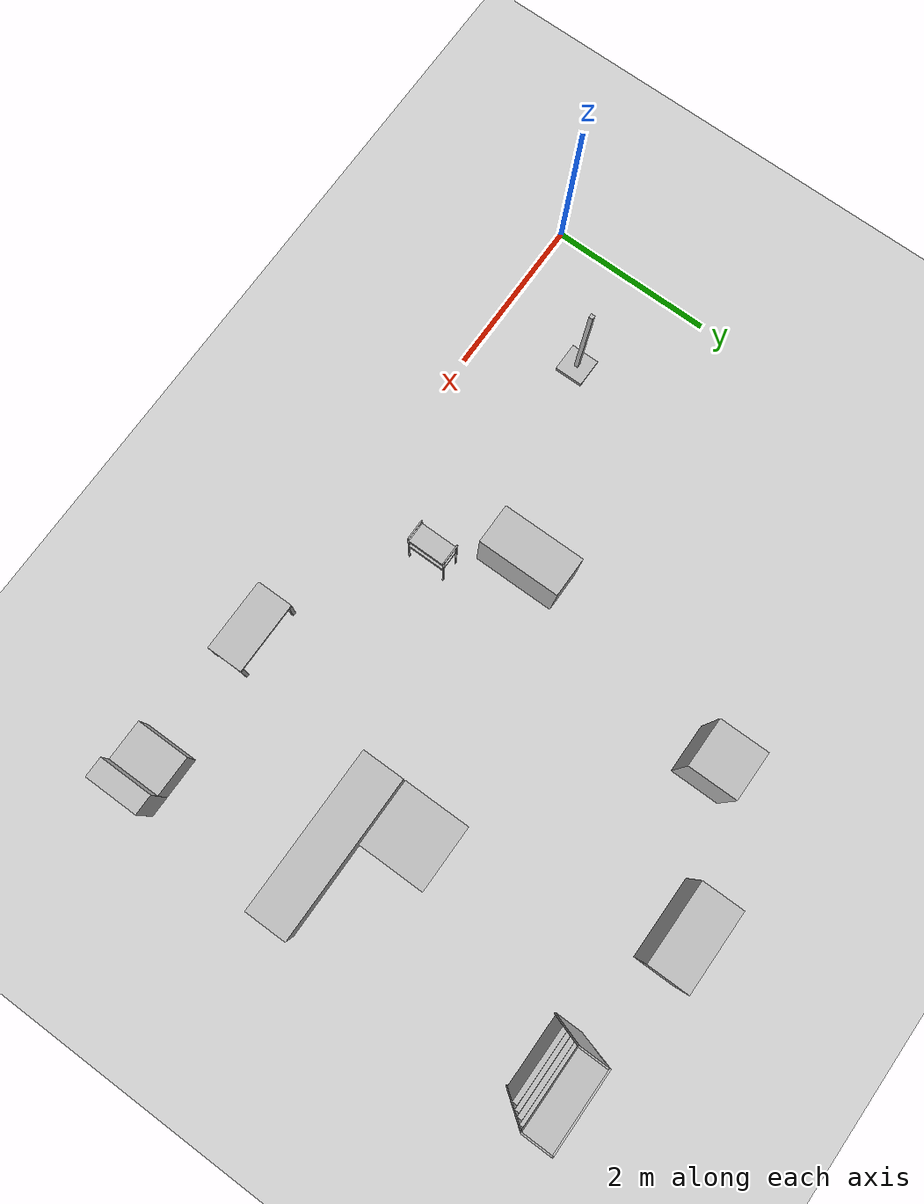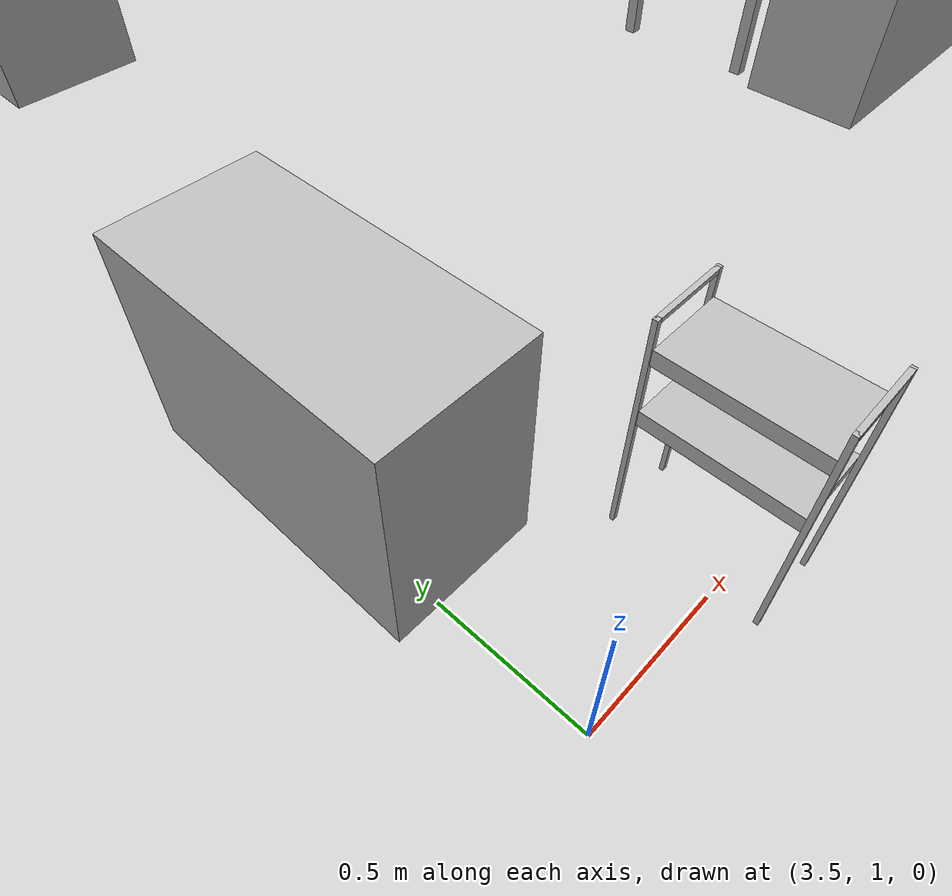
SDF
<sdf version="1.6">
 <world name="rwc2019">
  <light name="sun" type="directional">
   <direction>0.5 0.1 -0.9</direction>
   <pose>0 0 10 0 0 0</pose>
   <specular>0.2 0.2 0.2 1</specular>
   <diffuse>0.8 0.8 0.8 1</diffuse>
   <attenuation>
    <range>1000</range>
    <quadratic>0.001</quadratic>
    <constant>0.9</constant>
    <linear>0.01</linear>
   </attenuation>
  </light>
  <include><name>floor</name><uri>model://ground_plane</uri></include>
  <model name="office" type="room">
   <link name="in">
    <virtual_volume name="in_vv">
     <geometry><box><size>3.42404 2.90583 2.0</size></box></geometry>
     <pose>0.0 0.0 1.0 0 0 0</pose>
    </virtual_volume>
   </link>
   <pose>2.15542 -0.0369384 0 0 0 0</pose>
   <static>true</static>
  </model>
  <model name="living_room" type="room">
   <link name="in">
    <virtual_volume name="in_vv">
     <geometry><box><size>4.389 3.8936 2.0</size></box></geometry>
     <pose>0.0 0.25 1.0 0 0 0</pose>
    </virtual_volume>
   </link>
   <pose>6.13249 0.196431 0 0 0 0</pose>
   <static>true</static>
  </model>
  <model name="kitchen" type="room">
   <link name="in">
    <virtual_volume name="in_vv">
     <geometry><box><size>4.389 3.40932 2.0</size></box></geometry>
     <pose>0.0 0.25 1.0 0 0 0</pose>
    </virtual_volume>
   </link>
   <pose>6.13249 3.92289 0 0 0 0</pose>
   <static>true</static>
  </model>
  <model name="bedroom" type="room">
   <link name="in">
    <virtual_volume name="in_vv">
     <geometry><box><size>3.42404 4.36912894249 2.0</size></box></geometry>
     <pose>0.0 0.0 1.0 0 0 0</pose>
    </virtual_volume>
   </link>
   <pose>2.15542 3.692984223365 0 0 0 0</pose>
   <static>true</static>
  </model>
  <model name="initial_pose" type="waypoint"><static>true</static></model>
  <model name="registration_table1" type="waypoint">
   <pose>5.5 2.0 0 0 0 1.5707963267948966</pose>
   <static>true</static>
  </model>
  <model name="registration_table2" type="waypoint">
   <pose>5.5 1.25 0 0 0 1.5707963267948966</pose>
   <static>true</static>
  </model>
  <model name="registration_table3" type="waypoint">
   <pose>5.5 2.75 0 0 0 1.5707963267948966</pose>
   <static>true</static>
  </model>
  <model name="exit_1_rips" type="waypoint">
   <pose>7.0 7.5 0 0 0 1.5707963267948966</pose>
   <static>true</static>
  </model>
  <model name="exit_2_rips" type="waypoint">
   <pose>7.0 6.5 0 0 0 1.5707963267948966</pose>
   <static>true</static>
  </model>
  <model name="exit_3_rips" type="waypoint">
   <pose>7.0 6.0 0 0 0 1.5707963267948966</pose>
   <static>true</static>
  </model>
  <model name="serving_drinks_initial" type="waypoint">
   <pose>5.5 1.25 0 0 0 1.5707963267948966</pose>
   <static>true</static>
  </model>
  <model name="cleanup_initial" type="waypoint"><pose>2.0 0 0 0 0 0</pose><static>true</static></model>
  <model name="receptionist_start" type="waypoint">
   <pose>3.0 1.0 0 0 0 -3.1415</pose>
   <static>true</static>
  </model>
  <model name="look_at_entry_door_wp" type="waypoint">
   <pose>1.5 0.0 0 0 0 -3.1415</pose>
   <static>true</static>
  </model>
  <model name="helper_take_out_garbage" type="waypoint">
   <pose>5 0.70 0 0 0 2.7</pose>
   <static>true</static>
  </model>
  <model name="take_out_garbage_drop_zone" type="waypoint">
   <pose>6 6.55555 0 0 0 3.1415926535</pose>
   <static>true</static>
  </model>
  <model name="find_mates_search" type="waypoint"><pose>4.5 0 0 0 0 0</pose><static>true</static></model>
  <model name="find_mates_operator_point" type="waypoint">
   <pose>1.76876688004 0.547140717506 0 0 0 0</pose>
   <static>true</static>
  </model>
  <model name="where_is_this_information_point" type="waypoint">
   <pose>2.5 0.0 0 0 0 1.5707963267948966</pose>
   <static>true</static>
  </model>
  <model name="set_the_table_inspect" type="waypoint"><pose>5 3 0 0 0 0</pose><static>true</static></model>
  <model name="find_people_waypoint" type="waypoint">
   <pose>6.0 1.2 0.0 0.0 0.0 -1.5707963267948966</pose>
   <static>true</static>
  </model>
  <model name="hand_that_home_location" type="waypoint">
   <pose>5.0 1.0 0 0 0  0.8539816339</pose>
   <static>true</static>
  </model>
  <model name="final_fridge_waypoint" type="waypoint">
   <pose>5.75 4.65 0 0 0 2.3</pose>
   <static>true</static>
  </model>
  <include>
   <pose>1.28 1.1 0.0 0 0 0.0</pose>
   <name>coat_hanger</name>
   <uri>model://rwc2019/coat_hanger</uri>
  </include>
  <include>
   <pose>3.6 2.0 0.0 0 0 3.141592653589793</pose>
   <name>bedroom_chest</name>
   <uri>model://rwc2019/bedroom_chest</uri>
  </include>
  <include><pose>4.15 1.1 0.0 0 0 0</pose><name>rack</name><uri>model://rwc2019/rack</uri></include>
  <include>
   <pose>6.0 0.0 0.0 0 0 3.141592653589793</pose>
   <name>coffee_table</name>
   <uri>model://rwc2019/coffee_table</uri>
  </include>
  <include>
   <pose>7.75 0.0 0.0 0 0 3.141592653589793</pose>
   <name>armchair</name>
   <uri>model://rwc2019/armchair</uri>
  </include>
  <include>
   <pose>7.35 2.07 0.0 0 0 -1.5707963267948966</pose>
   <name>display_cabinet</name>
   <uri>model://rwc2019/display_cabinet</uri>
  </include>
  <include>
   <pose>6.75 2.75 0.0 0 0 -1.5707963267948966</pose>
   <name>kitchen_table</name>
   <uri>model://rwc2019/kitchen_table</uri>
  </include>
  <include>
   <pose>4.24 4.9 0.0 0 0 0.0</pose>
   <name>dishwasher</name>
   <uri>model://rwc2019/dishwasher</uri>
  </include>
  <include>
   <pose>5.9 5.62 0.0 0 0 -1.5707963267948966</pose>
   <name>island</name>
   <uri>model://rwc2019/island</uri>
  </include>
  <include>
   <pose>7.8 5.18 0.0 0 0 -1.5707963267948966</pose>
   <name>kitchen_cabinet</name>
   <uri>model://rwc2019/kitchen_cabinet</uri>
  </include>
  <physics type="ode">
   <real_time_update_rate>333.0</real_time_update_rate>
   <max_step_size>0.003</max_step_size>
   <ode><constraints><cfm>0.0001</cfm></constraints><solver><type>quick</type><iters>100</iters></solver></ode>
  </physics>
 </world>
</sdf>

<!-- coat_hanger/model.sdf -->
<sdf version="1.6">
  <model name="rwc2019/coat_hanger">
    <link name="1_link">
      <collision name="1_col">
        <geometry>
          <box>
            <size>0.35 0.35 0.05</size>
          </box>
        </geometry>
      </collision>
      <visual name="1_vis">
        <geometry>
          <box>
            <size>0.35 0.35 0.05</size>
          </box>
        </geometry>
      </visual>
      <pose>0.0 0.0 0.025 0 0 0</pose>
    </link>
    <link name="2_link">
      <collision name="2_col">
        <geometry>
          <box>
            <size>0.05 0.05 1.3</size>
          </box>
        </geometry>
      </collision>
      <visual name="2_vis">
        <geometry>
          <box>
            <size>0.05 0.05 1.3</size>
          </box>
        </geometry>
      </visual>
      <pose>0.0 0.0 0.65 0 0 0</pose>
    </link>
    <link name="in_front_of">
      <virtual_volume name="in_front_of_vv">
        <geometry>
          <box>
            <size>0.2 0.15 0.01</size>
          </box>
        </geometry>
        <pose>0.675 0.0 0.005 0 0 0</pose>
      </virtual_volume>
    </link>
    <static>true</static>
  </model>
</sdf>

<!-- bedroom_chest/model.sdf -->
<sdf version="1.6">
  <model name="rwc2019/bedroom_chest">
    <link name="1_link">
      <collision name="1_col">
        <geometry>
          <box>
            <size>0.49 1.01 0.75</size>
          </box>
        </geometry>
      </collision>
      <visual name="1_vis">
        <geometry>
          <box>
            <size>0.49 1.01 0.75</size>
          </box>
        </geometry>
      </visual>
      <pose>0.0 0.0 0.375 0 0 0</pose>
    </link>
    <link name="on_top_of">
      <virtual_volume name="on_top_of_vv">
        <geometry>
          <box>
            <size>0.45 0.95 0.25</size>
          </box>
        </geometry>
        <pose>0.02 0.0 0.895 0 0 0</pose>
      </virtual_volume>
    </link>
    <link name="in_front_of">
      <virtual_volume name="in_front_of_vv">
        <geometry>
          <box>
            <size>0.2 0.5 0.01</size>
          </box>
        </geometry>
        <pose>0.745 0.0 0.005 0 0 0</pose>
      </virtual_volume>
    </link>
    <static>true</static>
  </model>
</sdf>

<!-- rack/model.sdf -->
<sdf version="1.7">
  <model name="rack/rack">
    <link name="1_link">
      <collision name="1_col">
        <geometry>
          <box>
            <size>0.015 0.015 0.77</size>
          </box>
        </geometry>
      </collision>
      <visual name="1_vis">
        <geometry>
          <box>
            <size>0.015 0.015 0.77</size>
          </box>
        </geometry>
      </visual>
      <pose>0.12 -0.2325 0.385 0 0 0</pose>
    </link>
    <link name="1_1_link">
      <collision name="1_1_col">
        <geometry>
          <box>
            <size>0.015 0.015 0.77</size>
          </box>
        </geometry>
      </collision>
      <visual name="1_1_vis">
        <geometry>
          <box>
            <size>0.015 0.015 0.77</size>
          </box>
        </geometry>
      </visual>
      <pose>-0.12 -0.2325 0.385 0 0 0</pose>
    </link>
    <link name="1_2_link">
      <collision name="1_2_col">
        <geometry>
          <box>
            <size>0.24 0.015 0.015</size>
          </box>
        </geometry>
      </collision>
      <visual name="1_2_vis">
        <geometry>
          <box>
            <size>0.24 0.015 0.015</size>
          </box>
        </geometry>
      </visual>
      <pose>0 -0.2325 0.7625 0 0 0</pose>
    </link>
    <link name="2_link">
      <collision name="2_col">
        <geometry>
          <box>
            <size>0.015 0.015 0.77</size>
          </box>
        </geometry>
      </collision>
      <visual name="2_vis">
        <geometry>
          <box>
            <size>0.015 0.015 0.77</size>
          </box>
        </geometry>
      </visual>
      <pose>0.12 0.2325 0.385 0 0 0</pose>
    </link>
    <link name="2_2_link">
      <collision name="2_2_col">
        <geometry>
          <box>
            <size>0.015 0.015 0.77</size>
          </box>
        </geometry>
      </collision>
      <visual name="2_2_vis">
        <geometry>
          <box>
            <size>0.015 0.015 0.77</size>
          </box>
        </geometry>
      </visual>
      <pose>-0.12 0.2325 0.385 0 0 0</pose>
    </link>
    <link name="2_3_link">
      <collision name="2_3_col">
        <geometry>
          <box>
            <size>0.24 0.015 0.015</size>
          </box>
        </geometry>
      </collision>
      <visual name="2_3_vis">
        <geometry>
          <box>
            <size>0.24 0.015 0.015</size>
          </box>
        </geometry>
      </visual>
      <pose>0 0.2325 0.7625 0 0 0</pose>
    </link>
    <link name="6_link">
      <collision name="6_col">
        <geometry>
          <box>
            <size>0.245 0.45 0.05</size>
          </box>
        </geometry>
      </collision>
      <visual name="6_vis">
        <geometry>
          <box>
            <size>0.245 0.45 0.05</size>
          </box>
        </geometry>
      </visual>
      <pose>0.0 0.0 0.445 0 0 0</pose>
    </link>
    <link name="7_link">
      <collision name="7_col">
        <geometry>
          <box>
            <size>0.245 0.45 0.05</size>
          </box>
        </geometry>
      </collision>
      <visual name="7_vis">
        <geometry>
          <box>
            <size>0.245 0.45 0.05</size>
          </box>
        </geometry>
      </visual>
      <pose>0.0 0.0 0.655 0 0 0</pose>
    </link>
    <link name="in_front_of_link">
      <virtual_volume name="in_front_of">
        <geometry>
          <box>
            <size>0.2 0.15 0.01</size>
          </box>
        </geometry>
        <pose>0.63 0.05 0.005 0 0 0</pose>
      </virtual_volume>
    </link>
    <static>true</static>
  </model>
</sdf>

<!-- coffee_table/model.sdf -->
<sdf version="1.6">
  <model name="rwc2019/coffee_table">
    <link name="1_link">
      <collision name="1_col">
        <geometry>
          <box>
            <size>0.9 0.45 0.043</size>
          </box>
        </geometry>
      </collision>
      <visual name="1_vis">
        <geometry>
          <box>
            <size>0.9 0.45 0.043</size>
          </box>
        </geometry>
      </visual>
      <pose>0.0 0.0 0.4085 0 0 0</pose>
    </link>
    <link name="2_link">
      <collision name="2_col">
        <geometry>
          <box>
            <size>0.043 0.043 0.387</size>
          </box>
        </geometry>
      </collision>
      <visual name="2_vis">
        <geometry>
          <box>
            <size>0.043 0.043 0.387</size>
          </box>
        </geometry>
      </visual>
      <pose>-0.4285 -0.2035 0.1935 0 0 0</pose>
    </link>
    <link name="3_link">
      <collision name="3_col">
        <geometry>
          <box>
            <size>0.043 0.043 0.387</size>
          </box>
        </geometry>
      </collision>
      <visual name="3_vis">
        <geometry>
          <box>
            <size>0.043 0.043 0.387</size>
          </box>
        </geometry>
      </visual>
      <pose>0.4285 -0.2035 0.1935 0 0 0</pose>
    </link>
    <link name="4_link">
      <collision name="4_col">
        <geometry>
          <box>
            <size>0.043 0.043 0.387</size>
          </box>
        </geometry>
      </collision>
      <visual name="4_vis">
        <geometry>
          <box>
            <size>0.043 0.043 0.387</size>
          </box>
        </geometry>
      </visual>
      <pose>-0.4285 0.2035 0.1935 0 0 0</pose>
    </link>
    <link name="5_link">
      <collision name="5_col">
        <geometry>
          <box>
            <size>0.043 0.043 0.387</size>
          </box>
        </geometry>
      </collision>
      <visual name="5_vis">
        <geometry>
          <box>
            <size>0.043 0.043 0.387</size>
          </box>
        </geometry>
      </visual>
      <pose>0.4285 0.2035 0.1935 0 0 0</pose>
    </link>
    <link name="on_top_of">
      <virtual_volume name="on_top_of_vv">
        <geometry>
          <box>
            <size>0.88 0.39 0.25</size>
          </box>
        </geometry>
        <pose>0.0 0.0 0.575 0 0 0</pose>
      </virtual_volume>
    </link>
    <link name="in_front_of">
      <virtual_volume name="in_front_of_vv">
        <geometry>
          <box>
            <size>0.7 0.25 0.01</size>
          </box>
        </geometry>
        <pose>0.0 -0.725 0.005 0 0 0</pose>
      </virtual_volume>
    </link>
    <static>true</static>
  </model>
</sdf>

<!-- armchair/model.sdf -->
<sdf version="1.6">
  <model name="rwc2019/armchair">
    <link name="1_link">
      <collision name="1_col">
        <geometry>
          <box>
            <size>0.5 0.66 0.44</size>
          </box>
        </geometry>
      </collision>
      <visual name="1_vis">
        <geometry>
          <box>
            <size>0.5 0.66 0.44</size>
          </box>
        </geometry>
      </visual>
      <pose>0.0 0.0 0.22 0 0 0</pose>
    </link>
    <link name="back">
      <collision name="back_col">
        <geometry>
          <box>
            <size>0.25 0.66 0.75</size>
          </box>
        </geometry>
      </collision>
      <visual name="back_vis">
        <geometry>
          <box>
            <size>0.25 0.66 0.75</size>
          </box>
        </geometry>
      </visual>
      <pose>-0.375 0.0 0.375 0 0 0</pose>
    </link>
    <link name="on_top_of">
      <virtual_volume name="on_top_of_vv">
        <geometry>
          <box>
            <size>0.46 0.6 0.25</size>
          </box>
        </geometry>
        <pose>0.02 0.0 0.685 0 0 0</pose>
      </virtual_volume>
    </link>
    <link name="in_front_of">
      <virtual_volume name="in_front_of_vv">
        <geometry>
          <box>
            <size>0.2 0.46 0.01</size>
          </box>
        </geometry>
        <pose>0.75 0.0 0.005 0 0 0</pose>
      </virtual_volume>
    </link>
    <static>true</static>
  </model>
</sdf>

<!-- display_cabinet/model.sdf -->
<sdf version="1.6">
  <model name="rwc2019/display_cabinet">
    <link name="1_link">
      <collision name="1_col">
        <geometry>
          <box>
            <size>0.513 2.0 0.75</size>
          </box>
        </geometry>
      </collision>
      <visual name="1_vis">
        <geometry>
          <box>
            <size>0.513 2.0 0.75</size>
          </box>
        </geometry>
      </visual>
      <pose>0.0 0.0 0.375 0 0 0</pose>
    </link>
    <link name="on_top_of">
      <virtual_volume name="on_top_of_vv">
        <geometry>
          <box>
            <size>0.493 0.96 0.25</size>
          </box>
        </geometry>
        <pose>0.0 -0.48 0.895 0 0 0</pose>
      </virtual_volume>
    </link>
    <link name="in_front_of">
      <virtual_volume name="in_front_of_vv">
        <geometry>
          <box>
            <size>0.2 0.4 0.01</size>
          </box>
        </geometry>
        <pose>0.7565 -0.8 0.005 0 0 0</pose>
      </virtual_volume>
    </link>
    <static>true</static>
  </model>
</sdf>

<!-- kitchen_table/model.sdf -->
<sdf version="1.6">
  <model name="rwc2019/kitchen_table">
    <link name="1_link">
      <collision name="1_col">
        <geometry>
          <box>
            <size>0.8 0.8 0.008</size>
          </box>
        </geometry>
      </collision>
      <visual name="1_vis">
        <geometry>
          <box>
            <size>0.8 0.8 0.008</size>
          </box>
        </geometry>
      </visual>
      <pose>0.0 0.0 0.756 0 0 0</pose>
    </link>
    <link name="2_link">
      <collision name="2_col">
        <geometry>
          <box>
            <size>0.05 0.05 0.752</size>
          </box>
        </geometry>
      </collision>
      <visual name="2_vis">
        <geometry>
          <box>
            <size>0.05 0.05 0.752</size>
          </box>
        </geometry>
      </visual>
      <pose>-0.305 -0.305 0.376 0 0 0</pose>
    </link>
    <link name="3_link">
      <collision name="3_col">
        <geometry>
          <box>
            <size>0.05 0.05 0.752</size>
          </box>
        </geometry>
      </collision>
      <visual name="3_vis">
        <geometry>
          <box>
            <size>0.05 0.05 0.752</size>
          </box>
        </geometry>
      </visual>
      <pose>0.305 -0.305 0.376 0 0 0</pose>
    </link>
    <link name="4_link">
      <collision name="4_col">
        <geometry>
          <box>
            <size>0.05 0.05 0.752</size>
          </box>
        </geometry>
      </collision>
      <visual name="4_vis">
        <geometry>
          <box>
            <size>0.05 0.05 0.752</size>
          </box>
        </geometry>
      </visual>
      <pose>-0.305 0.305 0.376 0 0 0</pose>
    </link>
    <link name="5_link">
      <collision name="5_col">
        <geometry>
          <box>
            <size>0.05 0.05 0.752</size>
          </box>
        </geometry>
      </collision>
      <visual name="5_vis">
        <geometry>
          <box>
            <size>0.05 0.05 0.752</size>
          </box>
        </geometry>
      </visual>
      <pose>0.305 0.305 0.376 0 0 0</pose>
    </link>
    <link name="on_top_of">
      <virtual_volume name="on_top_of_vv">
        <geometry>
          <box>
            <size>0.78 0.74 0.25</size>
          </box>
        </geometry>
        <pose>0.0 0.0 0.905 0 0 0</pose>
      </virtual_volume>
    </link>
    <link name="in_front_of">
      <virtual_volume name="in_front_of_vv">
        <geometry>
          <box>
            <size>0.2 0.4 0.01</size>
          </box>
        </geometry>
        <pose>0.9 0.0 0.005 0 0 0</pose>
      </virtual_volume>
    </link>
    <link name="behind">
      <virtual_volume name="behind_vv">
        <geometry>
          <box>
            <size>0.2 0.4 0.01</size>
          </box>
        </geometry>
        <pose>-0.9 0.0 0.005 0 0 0</pose>
      </virtual_volume>
    </link>
    <link name="left_of">
      <virtual_volume name="left_of_vv">
        <geometry>
          <box>
            <size>0.2 0.4 0.01</size>
          </box>
        </geometry>
        <pose>0 -0.9 0.005 0 0 1.57</pose>
      </virtual_volume>
    </link>
    <link name="right_of">
      <virtual_volume name="right_of_vv">
        <geometry>
          <box>
            <size>0.2 0.4 0.01</size>
          </box>
        </geometry>
        <pose>0 0.9 0.005 0 0 1.57</pose>
      </virtual_volume>
    </link>
    <link name="in_front_of_close">
      <virtual_volume name="in_front_of_close_vv">
        <geometry>
          <box>
            <size>0.2 0.2 0.01</size>
          </box>
        </geometry>
        <pose>0.7 0.0 0.005 0 0 0</pose>
      </virtual_volume>
    </link>
    <link name="behind_close">
      <virtual_volume name="behind_close_vv">
        <geometry>
          <box>
            <size>0.2 0.2 0.01</size>
          </box>
        </geometry>
        <pose>-0.7 0.0 0.005 0 0 0</pose>
      </virtual_volume>
    </link>
    <link name="left_of_close">
      <virtual_volume name="left_of_close_vv">
        <geometry>
          <box>
            <size>0.2 0.2 0.01</size>
          </box>
        </geometry>
        <pose>0 -0.7 0.005 0 0 1.57</pose>
      </virtual_volume>
    </link>
    <link name="right_of_close">
      <virtual_volume name="right_of_close_vv">
        <geometry>
          <box>
            <size>0.2 0.2 0.01</size>
          </box>
        </geometry>
        <pose>0 0.7 0.005 0 0 1.57</pose>
      </virtual_volume>
    </link>
    <static>true</static>
  </model>
</sdf>

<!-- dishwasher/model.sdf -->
<sdf version="1.6">
  <model name="rwc2019/dishwasher">
    <link name="1_link">
      <collision name="1_col">
        <geometry>
          <box>
            <size>0.6 0.6 0.84</size>
          </box>
        </geometry>
      </collision>
      <visual name="1_vis">
        <geometry>
          <box>
            <size>0.6 0.6 0.84</size>
          </box>
        </geometry>
      </visual>
      <pose>0.0 0.0 0.42 0 0 0</pose>
    </link>
    <link name="on_top_of">
      <virtual_volume name="on_top_of_vv">
        <geometry>
          <box>
            <size>0.58 0.54 0.25</size>
          </box>
        </geometry>
        <pose>0.0 0.0 0.985 0 0 0</pose>
      </virtual_volume>
    </link>
    <link name="in_front_of">
      <virtual_volume name="in_front_of_vv">
        <geometry>
          <box>
            <size>0.18 0.4 0.01</size>
          </box>
        </geometry>
        <pose>0.82 0.0 0.005 0 0 0</pose>
      </virtual_volume>
    </link>
    <static>true</static>
  </model>
</sdf>

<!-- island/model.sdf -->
<sdf version="1.6">
  <model name="rwc2019/island">
    <link name="1_link">
      <collision name="1_col">
        <geometry>
          <box>
            <size>0.51 1.006 0.753</size>
          </box>
        </geometry>
      </collision>
      <visual name="1_vis">
        <geometry>
          <box>
            <size>0.51 1.006 0.753</size>
          </box>
        </geometry>
      </visual>
      <pose>0.0 0.0 0.3765 0 0 0</pose>
    </link>
    <link name="on_top_of">
      <virtual_volume name="on_top_of_vv">
        <geometry>
          <box>
            <size>0.47 0.946 0.25</size>
          </box>
        </geometry>
        <pose>0.02 0.0 0.898 0 0 0</pose>
      </virtual_volume>
    </link>
    <link name="in_front_of">
      <virtual_volume name="in_front_of_vv">
        <geometry>
          <box>
            <size>0.2 0.50 0.01</size>
          </box>
        </geometry>
        <pose>0.755 0.0 0.005 0 0 0</pose>
      </virtual_volume>
    </link>
    <static>true</static>
  </model>
</sdf>

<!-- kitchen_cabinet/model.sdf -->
<sdf version="1.6">
  <model name="rwc2019/kitchen_cabinet">
    <link name="1_link">
      <collision name="1_col">
        <geometry>
          <box>
            <size>0.34 0.018 1.98</size>
          </box>
        </geometry>
      </collision>
      <visual name="1_vis">
        <geometry>
          <box>
            <size>0.34 0.018 1.98</size>
          </box>
        </geometry>
      </visual>
      <pose>0.0 -0.441 0.99 0 0 0</pose>
    </link>
    <link name="2_link">
      <collision name="2_col">
        <geometry>
          <box>
            <size>0.34 0.018 1.98</size>
          </box>
        </geometry>
      </collision>
      <visual name="2_vis">
        <geometry>
          <box>
            <size>0.34 0.018 1.98</size>
          </box>
        </geometry>
      </visual>
      <pose>0.0 0.441 0.99 0 0 0</pose>
    </link>
    <link name="3_link">
      <collision name="3_col">
        <geometry>
          <box>
            <size>0.018 0.9 1.98</size>
          </box>
        </geometry>
      </collision>
      <visual name="3_vis">
        <geometry>
          <box>
            <size>0.018 0.9 1.98</size>
          </box>
        </geometry>
      </visual>
      <pose>-0.161 0.0 0.99 0 0 0</pose>
    </link>
    <link name="4_link">
      <collision name="4_col">
        <geometry>
          <box>
            <size>0.322 0.864 0.07</size>
          </box>
        </geometry>
      </collision>
      <visual name="4_vis">
        <geometry>
          <box>
            <size>0.322 0.864 0.07</size>
          </box>
        </geometry>
      </visual>
      <pose>0.009 0.0 1.945 0 0 0</pose>
    </link>
    <link name="5_link">
      <collision name="5_col">
        <geometry>
          <box>
            <size>0.322 0.864 0.7</size>
          </box>
        </geometry>
      </collision>
      <visual name="5_vis">
        <geometry>
          <box>
            <size>0.322 0.864 0.7</size>
          </box>
        </geometry>
      </visual>
      <pose>0.009 0.0 0.47 0 0 0</pose>
    </link>
    <link name="6_link">
      <collision name="6_col">
        <geometry>
          <box>
            <size>0.322 0.864 0.018</size>
          </box>
        </geometry>
      </collision>
      <visual name="6_vis">
        <geometry>
          <box>
            <size>0.322 0.864 0.018</size>
          </box>
        </geometry>
      </visual>
      <pose>0.009 0.0 1.143 0 0 0</pose>
    </link>
    <link name="7_link">
      <collision name="7_col">
        <geometry>
          <box>
            <size>0.322 0.864 0.018</size>
          </box>
        </geometry>
      </collision>
      <visual name="7_vis">
        <geometry>
          <box>
            <size>0.322 0.864 0.018</size>
          </box>
        </geometry>
      </visual>
      <pose>0.009 0.0 1.419 0 0 0</pose>
    </link>
    <link name="8_link">
      <collision name="8_col">
        <geometry>
          <box>
            <size>0.322 0.864 0.018</size>
          </box>
        </geometry>
      </collision>
      <visual name="8_vis">
        <geometry>
          <box>
            <size>0.322 0.864 0.018</size>
          </box>
        </geometry>
      </visual>
      <pose>0.009 0.0 1.716 0 0 0</pose>
    </link>
    <link name="in_front_of">
      <virtual_volume name="in_front_of_vv">
        <geometry>
          <box>
            <size>0.2 0.6 0.01</size>
          </box>
        </geometry>
        <pose>0.67 0.0 0.005 0 0 0</pose>
      </virtual_volume>
    </link>
    <link name="shelf1">
      <virtual_volume name="shelf1_vv">
        <geometry>
          <box>
            <size>0.282 0.804 0.25</size>
          </box>
        </geometry>
        <pose>0.029 0.0 0.965 0 0 0</pose>
      </virtual_volume>
    </link>
    <link name="shelf2">
      <virtual_volume name="shelf2_vv">
        <geometry>
          <box>
            <size>0.282 0.804 0.25</size>
          </box>
        </geometry>
        <pose>0.029 0.0 1.297 0 0 0</pose>
      </virtual_volume>
    </link>
    <link name="shelf3">
      <virtual_volume name="shelf3_vv">
        <geometry>
          <box>
            <size>0.282 0.804 0.25</size>
          </box>
        </geometry>
        <pose>0.029 0.0 1.573 0 0 0</pose>
      </virtual_volume>
      r
    </link>
    <link name="shelf4">
      <virtual_volume name="shelf4_vv">
        <geometry>
          <box>
            <size>0.282 0.804 0.17</size>
          </box>
        </geometry>
        <pose>0.029 0.0 1.82 0 0 0</pose>
      </virtual_volume>
    </link>
    <link name="on_top_of">
      <virtual_volume name="on_top_of_vv">
        <geometry>
          <box>
            <size>0.282 0.804 0.25</size>
          </box>
        </geometry>
        <pose>0.029 0.0 0.965 0 0 0</pose>
      </virtual_volume>
    </link>
    <static>true</static>
  </model>
</sdf>
